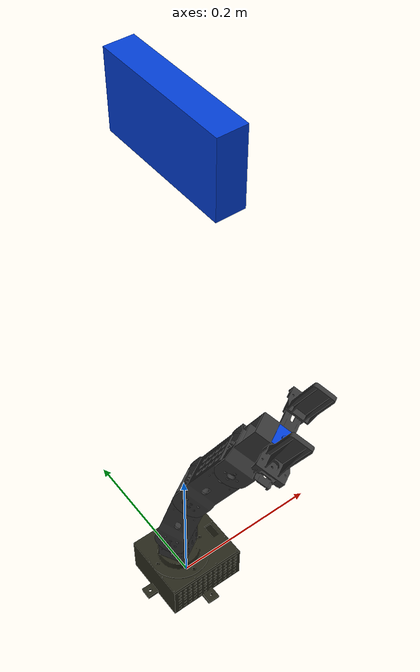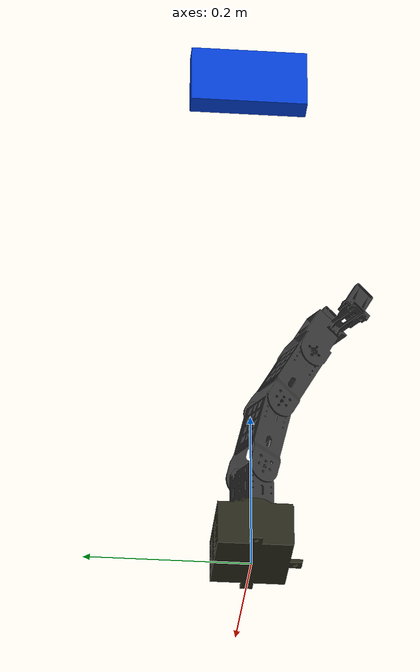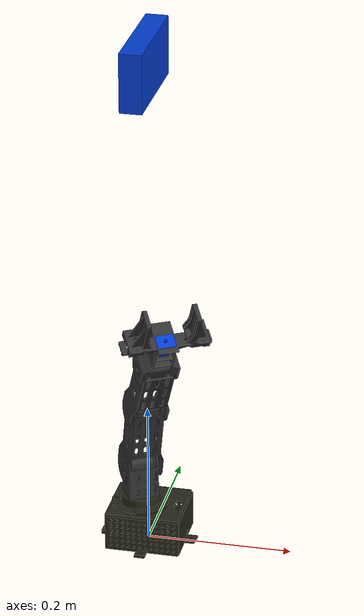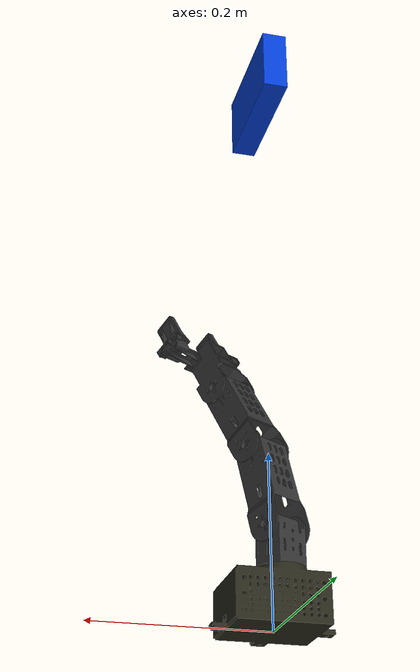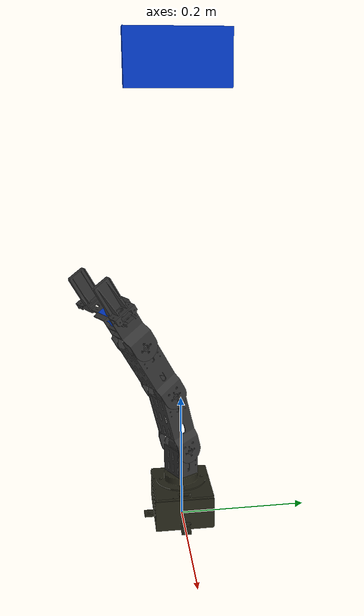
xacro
<?xml version="1.0"?>

<robot xmlns:xacro="http://www.ros.org/wiki/xacro" name="sortix_robot">

  <xacro:macro name="sortix_robot" params="prefix=''">

    <xacro:property
      name="visual_file_direction"
      value="package://my_first_package/urdf/meshes/visual"/>

    <xacro:property
      name="collision_file_direction"
      value="package://my_first_package/urdf/meshes/collision"/>

    <material name="dark_grey">
      <color rgba="0.15 0.15 0.1 1"/>
    </material>
    <material name="grey">
      <color rgba="0.2 0.2 0.2 1"/>
    </material>
    <material name="blue">
      <color rgba="0.0078 0.239 0.823 1" />
    </material>

    <!-- Anchor the robot to the simulation world -->
    <link name="world"/>
    <joint name="world_fixed_joint" type="fixed">
      <parent link="world"/>
      <child link="${prefix}link0"/>
      <origin xyz="0 0 0" rpy="0 0 0"/>
    </joint>

    <!-- link0 (Base)                          -->
    <link name="${prefix}link0">
      <visual>
        <origin xyz="0 0 0" rpy="0 0 0"/>
        <geometry>
          <mesh filename="${visual_file_direction}/link0.dae" scale ="1 1 1"/>
        </geometry>
        <material name="grey">
          <color rgba="0.15 0.15 0.1 1"/>
        </material>
      </visual>

      <collision>
        <origin xyz="0 0 0" rpy="0 0 0"/>
        <geometry>
          <mesh filename="${collision_file_direction}/link0.STL" scale ="1 1 1"/>
        </geometry>
      </collision>

      <inertial>
        <origin xyz="-0.000914616748248252 0.0308804211192079 0.000563973631153566"  rpy="0 0 0" />
        <mass  value="0.199548034929985" />
        <inertia    ixx="0.000124925715170626"  ixy="-7.29387980643628E-08"  ixz="-2.71280807091132E-07"
                    iyy="0.00027925076382033"   iyz="8.57320699235363E-07"   izz="0.000206894585655822" />
      </inertial>

    </link>

    <!-- Link1                        -->
    <link name="${prefix}link1">
      <visual>
        <origin xyz="0 0 0" rpy="0 0 0"/>
        <geometry>
          <mesh filename="${visual_file_direction}/link1.dae" scale ="1 1 1"/>
        </geometry>
        <material name="grey" />
      </visual>

      <collision>
        <origin xyz="0 0 0" rpy="0 0 0"/>
        <geometry>
          <mesh filename="${collision_file_direction}/link1.STL" scale ="1 1 1"/>
        </geometry>
      </collision>

      <inertial>
        <origin xyz="0.000500465465171303 0.045795751385422 -3.29366537812211E-05" rpy="0 0 0" />
        <mass  value="0.0647285312592185" />
        <inertia  ixx="1.93336830845547E-05"   ixy="2.56571602643507E-07"   ixz="4.74629949097521E-09"
                  iyy="1.22233045296973E-05"   iyz="5.92612722797813E-07"   izz="2.28084092658359E-05" />
      </inertial>

    </link>

    <joint name="${prefix}joint1" type="revolute">
      <parent link="${prefix}link0"/>
      <child link="${prefix}link1"/>
      <origin xyz="-0.011 0 0.049" rpy="1.5708 0 0.523599" />
      <axis xyz="0 1 0"/>
        <limit lower="0" upper="5.23599" effort="4" velocity="5"/>
      <dynamics damping="0.1"/>
    </joint>

    <!-- Link2                        -->
    <link name="${prefix}link2">
      <visual>
        <origin xyz="0 0 0" rpy="0 0 0"/>
        <geometry>
          <mesh filename="${visual_file_direction}/link2.dae" scale ="1 1 1"/>
        </geometry>
        <material name="grey" />
      </visual>

      <collision>
        <origin xyz="0 0 0" rpy="0 0 0"/>
        <geometry>
          <mesh filename="${collision_file_direction}/link2.STL" scale ="1 1 1"/>
        </geometry>
      </collision>

    <inertial>
      <origin  xyz="0.000468398051078444 0.0737095878658311 2.20093076735485E-05"  rpy="0 0 0" />
      <mass   value="0.0737124807722506" />
      <inertia   ixx="5.06179888957108E-05"   ixy="5.88927432047404E-07"  ixz="-2.75301812807799E-08"
                 iyy="2.14652983341695E-05"  iyz="1.37143080833875E-06" izz="5.92769046404828E-05" />
    </inertial>
    </link>

    <joint name="${prefix}joint2" type="revolute">
      <parent link="${prefix}link1"/>
      <child link="${prefix}link2"/>
       <origin  xyz="0 0.065 0" rpy="-0.523599 0 3.1416" />
      <axis xyz="-1 0 0"/>
      <limit lower="1.74533" upper="4.01426" effort="4" velocity="5" />
      <dynamics damping="0.1"/>
    </joint>

    <!--   Link3                        -->
    <link name="${prefix}link3">
      <visual>
        <origin xyz="0 0 0" rpy="0 0 0"/>
        <geometry>
          <mesh filename="${visual_file_direction}/link3.dae" scale ="1 1 1"/>
        </geometry>
        <material name="grey" />
      </visual>

      <collision>
        <origin xyz="0 0 0" rpy="0 0 0"/>
        <geometry>
          <mesh filename="${collision_file_direction}/link3.STL" scale ="1 1 1"/>
        </geometry>
      </collision>

    <inertial>
      <origin xyz="0.000468398051078452 0.0737095878658311 2.44929678077526E-05" rpy="0 0 0" />
      <mass  value="0.0737124807722506" />
      <inertia   ixx="5.06179888957109E-05" ixy="5.88927432047437E-07"  ixz="-2.75301812806267E-08"
                 iyy="2.14652983341695E-05"  iyz="1.37143080833876E-06"  izz="5.92769046404829E-05" />
    </inertial>

    </link>

    <joint name="${prefix}joint3" type="revolute">
      <parent link="${prefix}link2"/>
      <child link="${prefix}link3"/>
      <origin  xyz="0 0.1025 0" rpy="-0.523588 3.14159 3.1416" />
      <axis xyz="-1 0 0"/>
      <limit lower="1.74533" upper="4.01426" effort="4" velocity="5" />
      <dynamics damping="0.1"/>
    </joint>

    <!-- Link4                         -->
    <link name="${prefix}link4">
      <visual>
        <origin xyz="0 0 0" rpy="0 0 0"/>
        <geometry>
          <mesh filename="${visual_file_direction}/link4.dae" scale ="1 1 1"/>
        </geometry>
        <material name="grey" />
      </visual>

      <collision>
        <origin xyz="0 0 0" rpy="0 0 0"/>
        <geometry>
          <mesh filename="${collision_file_direction}/link4.STL" scale ="1 1 1"/>
        </geometry>
      </collision>

     <inertial>
      <origin xyz="7.00088753405725E-05 0.0417026304214911 0.002347732801147" rpy="0 0 0" />
      <mass  value="0.0294384031068519" />
      <inertia  ixx="1.96693553117083E-05"    ixy="-7.6034787486218E-12" ixz="8.16105975743595E-11"
                iyy="1.11965908986346E-05" iyz="-2.66205657272791E-07" izz="2.4094122833777E-05" />
    </inertial>
    </link>

    <joint name="${prefix}joint4" type="revolute">
        <parent link="${prefix}link3"/>
        <child link="${prefix}link4"/>
        <origin  xyz="0 0.1025 0" rpy="3.665188 3.14159 0" />
        <axis xyz="1 0 0"/>
        <limit lower="1.22173" upper="4.01426" effort="4" velocity="5" />
        <dynamics damping="0.1"/>
    </joint>

    <!-- Link5                        -->
    <link name="${prefix}link5">
      <inertial>
        <origin   xyz="-0.00474016703919584 0.0133576389477266 4.34032173049492E-10"  rpy="0 0 0" />
        <mass value="0.1" /> <!-- Increased from 0.007 -->
        <inertia ixx="0.0001" ixy="0.0" ixz="0.0"
                 iyy="0.0001" iyz="0.0" izz="0.0001" />
      </inertial>
      <visual>
        <origin   xyz="0 0 0" rpy="0 0 0" />
        <geometry>
          <mesh filename="${visual_file_direction}/link5.dae" scale ="1 1 1"/>
        </geometry>
        <material name="blue">
          <color rgba="0.00784313725490196 0.23921568627451 0.823529411764706 1" />
        </material>
      </visual>
      <collision>
        <origin   xyz="0 0 0" rpy="0 0 0" />
        <geometry>
        <mesh filename="${collision_file_direction}/link5.STL" scale ="1 1 1"/>
        </geometry>
      </collision>
    </link>

    <joint name="${prefix}joint5" type="fixed">
      <origin xyz="7E-05 0.046 0.01"  rpy="6.28319 -1.5708 6.28319" />
      <parent  link="${prefix}link4" />
      <child link="${prefix}link5" />
    </joint>

    <link name="${prefix}link6">
      <inertial>
        <origin xyz="0 0 0" rpy="0 0 0"/>
        <mass value="0.05"/>
        <inertia ixx="1.675e-05" ixy="0.0" ixz="0.0"
                iyy="2.083e-05" iyz="0.0" izz="1.05e-07"/>
      </inertial>
      <visual>
        <origin xyz="0 0 0" rpy="0 0 0"/>
        <geometry>
          <box size="0.025 0.001 0.02"/>
        </geometry>
        <material name="blue">
          <color rgba="0.00784313725490196 0.23921568627451 0.823529411764706 1" />
        </material>
      </visual>

      <collision>
        <origin xyz="0 0 0" rpy="0 0 0"/>
        <geometry>
          <box size="0.025 0.001 0.02"/>
        </geometry>
      </collision>
    </link>

    <joint name="${prefix}joint6" type="fixed">
      <origin xyz="0 0.028 0"  rpy="0 1.5708 0" />
      <parent  link="${prefix}link5" />
      <child link="${prefix}link6" />
    </joint>

    <!--Tool link-->

    <!-- TCP frame on eef_link -->
    <link name="${prefix}eef_link_tcp"/>
    <joint name="${prefix}eef_link_tcp_joint" type="fixed">
      <origin  xyz="0 0.03 0 "  rpy="0 0 0"/>
      <parent link="${prefix}link6"/>
      <child link="${prefix}eef_link_tcp"/>
    </joint>

    <!-- Gripper fingers               -->

    <link name="${prefix}finger1">
      <visual>
        <origin xyz="0 0 0" rpy="0 0 0"/>
        <geometry>
          <mesh filename="${visual_file_direction}/finger1.dae" scale ="1 1 1"/>
        </geometry>
        <material name="grey" />
      </visual>

      <collision>
        <origin xyz="0 0 0" rpy="0 0 0"/>
        <geometry>
          <mesh filename="${collision_file_direction}/finger1.STL" scale ="1 1 1"/>
        </geometry>
      </collision>

      <inertial>
        <origin xyz="0.013 0.022 0.017" rpy="0 0 0" />
        <mass  value="0.0106115739938268" />
        <inertia  ixx="2.64584898744647E-06"  ixy="1.85400068592276E-07"  ixz="-9.25241773092679E-11"
                  iyy="1.3024368711556E-06"  iyz="-6.15075189811524E-11"  izz="2.08791646012211E-06" />
      </inertial>

    </link>

    <!-- Prismatic finger joint (left) -->
    <joint name="${prefix}finger1_joint" type="prismatic">
      <parent link="${prefix}link6"/>
      <child link="${prefix}finger1"/>
      <origin  xyz="-0.024912 -0.004 0.017784" rpy="-3.1416 0 3.1416" />
      <axis xyz="1 0 0"/>
      <limit lower="-0.019" upper="0.007" effort="1" velocity="2"/>
      <dynamics damping="0.001" friction="0.001"/>
    </joint>

    <link name="${prefix}finger2">
      <visual>
        <origin xyz="0 0 0" rpy="0 0 0"/>
        <geometry>
          <mesh filename="${visual_file_direction}/finger2.dae" scale ="1 1 1"/>
        </geometry>
        <material name="grey" />
      </visual>

      <collision>
        <origin xyz="0 0 0" rpy="0 0 0"/>
        <geometry>
          <mesh filename="${collision_file_direction}/finger2.STL" scale ="1 1 1"/>
        </geometry>
      </collision>

      <inertial>
        <origin xyz="0.013 0.022 0.017" rpy="0 0 0" />
        <mass  value="0.0106115739938268" />
        <inertia  ixx="2.64584898744647E-06"  ixy="1.85400068592276E-07"  ixz="-9.25241773092679E-11"
                  iyy="1.3024368711556E-06"  iyz="-6.15075189811524E-11"  izz="2.08791646012211E-06" />
      </inertial>

    </link>

    <!-- Prismatic finger joint (right), mimics finger1_joint in opposite direction -->
   <joint name="${prefix}finger2_joint_mimic" type="prismatic">
        <parent link="${prefix}link6"/>
        <child link="${prefix}finger2"/>
        <origin xyz="0.025052 -0.004 -0.017784"  rpy="0 0 0" />
        <axis xyz="-1 0 0"/>
        <limit lower="-0.007" upper="0.019" effort="1" velocity="2"/>
        <dynamics damping="0.001" friction="0.001"/>
        <mimic joint="${prefix}finger1_joint" multiplier="-1"/>
   </joint>

   <link name="depth_camera_link">
        <visual>
            <origin xyz="0 0 0" rpy="0 0 0"/>
            <geometry>
                <box size="0.03 0.15 0.08"/>
            </geometry>
            <material name="blue" />
        </visual>

        <collision>
            <origin xyz="0 0 0" rpy="0 0 0"/>
            <geometry>
                <box size="0.03 0.15 0.08"/>
            </geometry>
        </collision>

        <inertial>
            <origin xyz="0 0 0" rpy="0 0 0"/>
            <mass value="0.01"/>
            <inertia
                ixx="0.0001"
                ixy="0"
                ixz="0"
                iyy="0.0001"
                iyz="0"
                izz="0.0001"/>
        </inertial>

    </link>

    <joint name="depth_camera_joint" type="fixed">
        <parent link="sortix_link0"/>
        <child link="depth_camera_link"/>
        <origin xyz="0.0 0.0 0.7" rpy="0 0 0"/>
    </joint>

    <link name="depth_camera_link_optical"/>

    <joint name="depth_camera_optical_joint" type="fixed">
        <parent link="sortix_link0"/>
        <child link="depth_camera_link_optical"/>
        <!-- Converts standard frame to standard optical frame (-90deg Roll, -90deg Yaw) -->
        <origin xyz="0.0 0.0 0.7" rpy="${-pi/2} 0 ${-pi/2}"/>
    </joint>

   </xacro:macro>
  <xacro:sortix_robot prefix="sortix_"/>
</robot>
